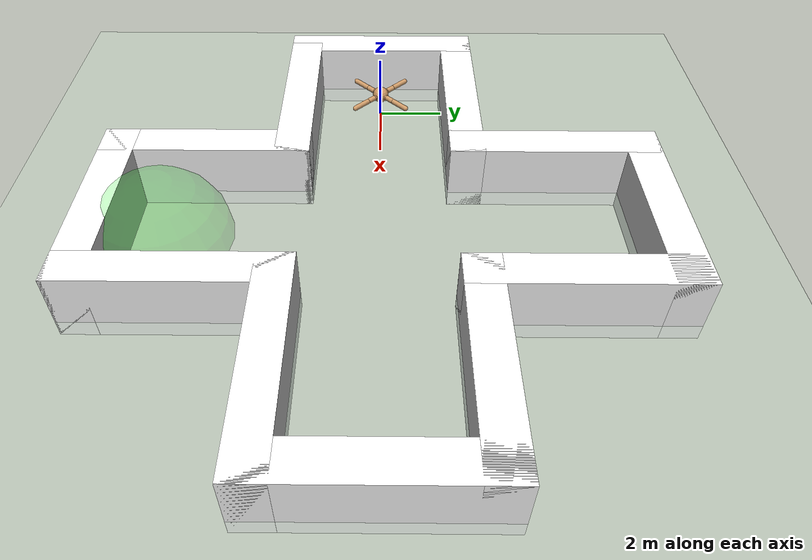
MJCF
<mujoco model="ant">
  <compiler inertiafromgeom="true" angle="degree" coordinate="local" />
  <option timestep="0.02" integrator="RK4" />
  <custom>
    <numeric name="init_qpos" data="0.0 0.0 0.55 1.0 0.0 0.0 0.0 0.0 1.0 0.0 -1.0 0.0 -1.0 0.0 1.0" />
  </custom>
  <default>
    <joint limited="true" armature="1" damping="1" />
    <geom condim="3" conaffinity="0" margin="0.01" friction="1 0.5 0.5" solref=".02 1" solimp=".8 .8 .01" rgba="0.8 0.6 0.4 1" density="5.0" />
  </default>
  <asset>
    <texture type="skybox" builtin="gradient" width="100" height="100" rgb1="1 1 1" rgb2="0 0 0" />
    <texture name="texgeom" type="cube" builtin="flat" mark="cross" width="127" height="1278" rgb1="0.8 0.6 0.4" rgb2="0.8 0.6 0.4" markrgb="1 1 1" random="0.01" />
    <texture name="texplane" type="2d" builtin="checker" rgb1="0 0 0" rgb2="0.8 0.8 0.8" width="100" height="100" />
    <material name='MatPlane' texture="texplane" shininess="1" texrepeat="60 60" specular="1"  reflectance="0.5" />
    <material name='geom' texture="texgeom" texuniform="true" />
  </asset>
  <worldbody>
    <light directional="true" cutoff="100" exponent="1" diffuse="1 1 1" specular=".1 .1 .1" pos="0 0 1.3" dir="-0 0 -1.3" />
    <geom name='floor' material="MatPlane" pos='0 0 0' size='40 40 40' type='plane' conaffinity='1' rgba='0.8 0.9 0.8 1' condim='3' />
    <body name="torso" pos="0 0 0.75">
      <geom name="torso_geom" type="sphere" size="0.25" pos="0 0 0" />
      <joint name="root" type="free" limited="false" pos="0 0 0" axis="0 0 1" margin="0.01" armature="0" damping="0" />
      <body name="front_left_leg" pos="0 0 0">
        <geom name="aux_1_geom" type="capsule" size="0.08" fromto="0.0 0.0 0.0 0.2 0.2 0.0" />
        <body name="aux_1" pos="0.2 0.2 0">
          <joint name="hip_1" type="hinge" pos="0.0 0.0 0.0" axis="0 0 1" range="-30 30" />
          <geom name="left_leg_geom" type="capsule" size="0.08" fromto="0.0 0.0 0.0 0.2 0.2 0.0" />
          <body pos="0.2 0.2 0">
            <joint name="ankle_1" type="hinge" pos="0.0 0.0 0.0" axis="-1 1 0" range="30 70" />
            <geom name="left_ankle_geom" type="capsule" size="0.08" fromto="0.0 0.0 0.0 0.4 0.4 0.0" />
          </body>
        </body>
      </body>
      <body name="front_right_leg" pos="0 0 0">
        <geom name="aux_2_geom" type="capsule" size="0.08" fromto="0.0 0.0 0.0 -0.2 0.2 0.0" />
        <body name="aux_2" pos="-0.2 0.2 0">
          <joint name="hip_2" type="hinge" pos="0.0 0.0 0.0" axis="0 0 1" range="-30 30" />
          <geom name="right_leg_geom" type="capsule" size="0.08" fromto="0.0 0.0 0.0 -0.2 0.2 0.0" />
          <body pos="-0.2 0.2 0">
            <joint name="ankle_2" type="hinge" pos="0.0 0.0 0.0" axis="1 1 0" range="-70 -30" />
            <geom name="right_ankle_geom" type="capsule" size="0.08" fromto="0.0 0.0 0.0 -0.4 0.4 0.0" />
          </body>
        </body>
      </body>
      <body name="back_leg" pos="0 0 0">
        <geom name="aux_3_geom" type="capsule" size="0.08" fromto="0.0 0.0 0.0 -0.2 -0.2 0.0" />
        <body name="aux_3" pos="-0.2 -0.2 0">
          <joint name="hip_3" type="hinge" pos="0.0 0.0 0.0" axis="0 0 1" range="-30 30" />
          <geom name="back_leg_geom" type="capsule" size="0.08" fromto="0.0 0.0 0.0 -0.2 -0.2 0.0" />
          <body pos="-0.2 -0.2 0">
            <joint name="ankle_3" type="hinge" pos="0.0 0.0 0.0" axis="-1 1 0" range="-70 -30" />
            <geom name="third_ankle_geom" type="capsule" size="0.08" fromto="0.0 0.0 0.0 -0.4 -0.4 0.0" />
          </body>
        </body>
      </body>
      <body name="right_back_leg" pos="0 0 0">
        <geom name="aux_4_geom" type="capsule" size="0.08" fromto="0.0 0.0 0.0 0.2 -0.2 0.0" />
        <body name="aux_4" pos="0.2 -0.2 0">
          <joint name="hip_4" type="hinge" pos="0.0 0.0 0.0" axis="0 0 1" range="-30 30" />
          <geom name="rightback_leg_geom" type="capsule" size="0.08" fromto="0.0 0.0 0.0 0.2 -0.2 0.0" />
          <body pos="0.2 -0.2 0">
            <joint name="ankle_4" type="hinge" pos="0.0 0.0 0.0" axis="1 1 0" range="30 70" />
            <geom name="fourth_ankle_geom" type="capsule" size="0.08" fromto="0.0 0.0 0.0 0.4 -0.4 0.0" />
          </body>
        </body>
      </body>
    </body>

    <geom name="wall-0" pos="1   -2.5 .5" rgba="1. 1. 1. 1" type="box" size="3 0.5 1" density='0.00001' contype="1" conaffinity="1"/>
    <geom name="wall-1" pos="-2     0 .5" rgba="1. 1. 1. 1" type="box" size="0.5 3 1" density='0.00001' contype="1" conaffinity="1"/>
    <geom name="wall-2" pos="1    2.5 .5" rgba="1. 1. 1. 1" type="box" size="3 0.5 1" density='0.00001' contype="1" conaffinity="1"/>

    <geom name="wall-3" pos="3.5   5 .5" rgba="1. 1. 1. 1" type="box" size="0.5 3 1" density='0.00001' contype="1" conaffinity="1"/>
    <geom name="wall-4" pos="6   7.5 .5" rgba="1. 1. 1. 1" type="box" size="3 0.5 1" density='0.00001' contype="1" conaffinity="1"/>
    <geom name="wall-5" pos="8.5   5 .5" rgba="1. 1. 1. 1" type="box" size="0.5 3 1" density='0.00001' contype="1" conaffinity="1"/>

    <geom name="wall-6" pos="11    -2.5 .5" rgba="1. 1. 1. 1" type="box" size="3 0.5 1" density='0.00001' contype="1" conaffinity="1"/>
    <geom name="wall-7" pos="13.5     0 .5" rgba="1. 1. 1. 1" type="box" size="0.5 3 1" density='0.00001' contype="1" conaffinity="1"/>
    <geom name="wall-8" pos="11     2.5 .5" rgba="1. 1. 1. 1" type="box" size="3 0.5 1" density='0.00001' contype="1" conaffinity="1"/>

    <geom name="wall-9" pos="3.5   -5 .5" rgba="1. 1. 1. 1" type="box" size="0.5 3 1" density='0.00001' contype="1" conaffinity="1"/>
    <geom name="wall-10" pos="6  -7.5 .5" rgba="1. 1. 1. 1" type="box" size="3 0.5 1" density='0.00001' contype="1" conaffinity="1"/>
    <geom name="wall-11" pos="8.5   -5 .5" rgba="1. 1. 1. 1" type="box" size="0.5 3 1" density='0.00001' contype="1" conaffinity="1"/>

    <geom name="target" pos="6 -6 0" rgba="0 1 0 0.2" type="sphere" size="2"/>

  </worldbody>
  <actuator>
    <motor joint="hip_4" ctrlrange="-150.0 150.0" ctrllimited="true" />
    <motor joint="ankle_4" ctrlrange="-150.0 150.0" ctrllimited="true" />
    <motor joint="hip_1" ctrlrange="-150.0 150.0" ctrllimited="true" />
    <motor joint="ankle_1" ctrlrange="-150.0 150.0" ctrllimited="true" />
    <motor joint="hip_2" ctrlrange="-150.0 150.0" ctrllimited="true" />
    <motor joint="ankle_2" ctrlrange="-150.0 150.0" ctrllimited="true" />
    <motor joint="hip_3" ctrlrange="-150.0 150.0" ctrllimited="true" />
    <motor joint="ankle_3" ctrlrange="-150.0 150.0" ctrllimited="true" />
  </actuator>
</mujoco>
